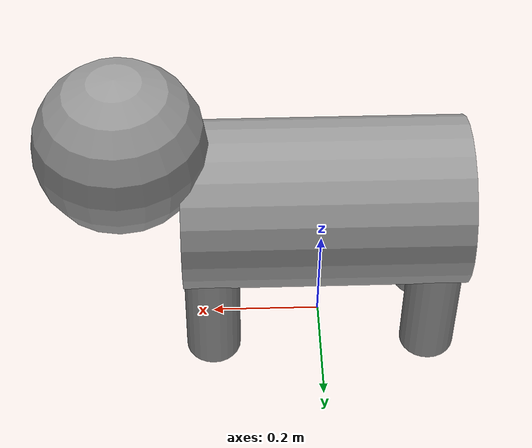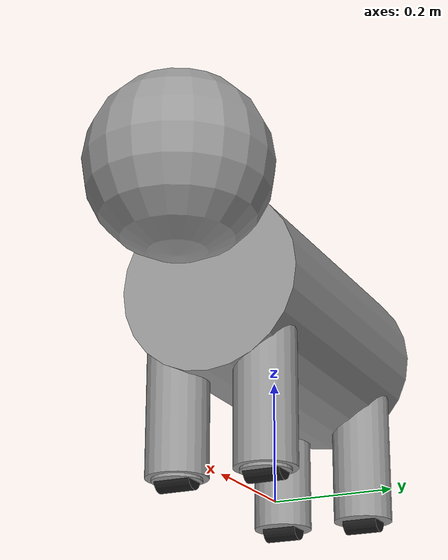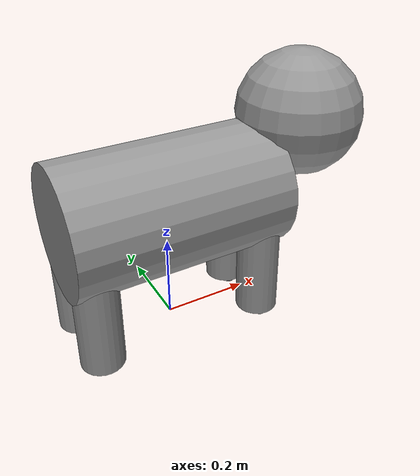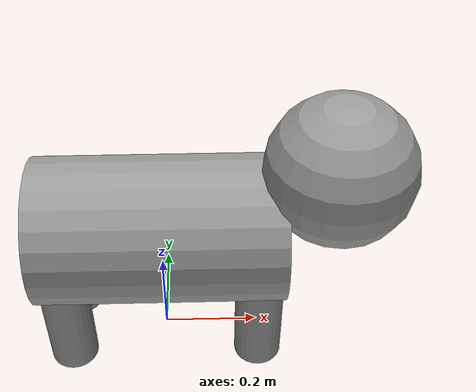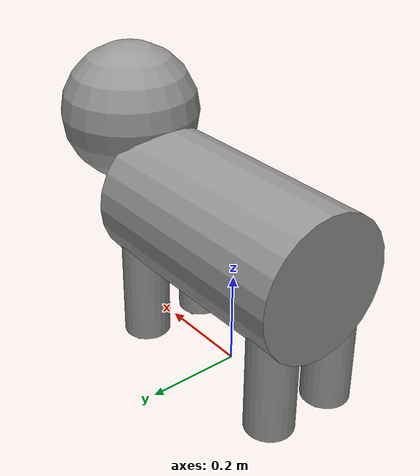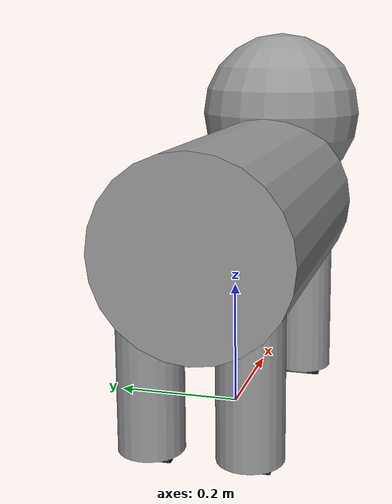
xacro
<?xml version="1.0"?>

<robot name="cat" xmlns:xacro="http://www.ros.org/wiki/xacro">

	<xacro:property name="PI" value="3.1415926535897931"/>

	<xacro:property name="bodyLength" value="0.5"/>
	<xacro:property name="bodyRadius" value="0.15"/>
	<xacro:property name="bodyMass" value="100"/>

	<xacro:property name="headRadius" value="0.15"/>
	<xacro:property name="headMass" value="10"/>

	<xacro:property name="legLength" value="0.25"/>
	<xacro:property name="legRadius" value="0.05"/>
	<xacro:property name="legMass" value="10"/>

	<xacro:property name="spinnerLength" value="0.01"/>
	<xacro:property name="spinnerRadius" value="0.04"/>
	<xacro:property name="spinnerMass" value="1"/>

	<xacro:property name="wheelLength" value="0.06"/>
	<xacro:property name="wheelRadius" value="0.02"/>
	<xacro:property name="wheelMass" value="10"/>

	<xacro:include filename="$(find cat_description)/urdf/cat.gazebo" />
	<xacro:include filename="$(find cat_description)/urdf/materials.xacro" />
	<xacro:include filename="$(find cat_description)/urdf/macros.xacro" />

	<link name="base_link">
		<collision>
			<geometry>
				<cylinder length="${bodyLength}" radius="${bodyRadius}" />
			</geometry>
			<origin rpy="0 ${PI/2} 0" xyz="0 0 0.3"/>
		</collision>
		<visual>
			<geometry>
				<cylinder length="${bodyLength}" radius="${bodyRadius}" />
			</geometry>
			<origin rpy="0 ${PI/2} 0" xyz="0 0 0.3"/>
			<material name="grey" />
		</visual>
		<inertial>
			<origin rpy="0 ${PI/2} 0" xyz="0 0 0.3"/>
			<mass value="${bodyMass}"/>
			<cylinder_inertia m="${bodyMass}" r="${bodyRadius}" h="${bodyLength}"/>
		</inertial>
	</link>

	<link name="head">
		<visual>
			<geometry>
				<sphere radius="${headRadius}" />
			</geometry>
			<material name="grey" />
		</visual>
		<collision>
			<geometry>
				<sphere radius="${headRadius}" />
			</geometry>
		</collision>
		<inertial>
			<mass value="${headMass}"/>
			<sphere_inertia m="${headMass}" r="${headRadius}" />
		</inertial>
	</link>

	<joint name="base_head" type="fixed">
		<parent link="base_link"/>
		<child link="head"/>
		<origin rpy="0 0 0" xyz="0.35 0 0.45"/>
	</joint>

	<leg lr="L" fb="F" tY="1" tX="1" />
	<leg lr="R" fb="F" tY="-1" tX="1" />
	<leg lr="L" fb="B" tY="1" tX="-1" />
	<leg lr="R" fb="B" tY="-1" tX="-1" />

	<spinnerL R="0.5"/>
	<spinnerR R="0.5"/>

	<wheel lr="L" fb="F"/>
	<wheel lr="R" fb="F"/>
	<wheelB lr="L" fb="B"/>
	<wheelB lr="R" fb="B"/>

	<joint name="hokuyo_joint" type="fixed">
		<axis xyz="0 0 0" />
		<origin xyz="0 0 0" rpy="0 0 0"/>
		<parent link="head"/>
		<child link="hokuyo_link"/>
  	</joint>

	<!-- Hokuyo Laser -->
	<link name="hokuyo_link">
		<collision>
		<origin xyz="0 0 0" rpy="0 0 0"/>
		<geometry>
		<box size="0.1 0.1 0.1"/>
		</geometry>
		</collision>

		<visual>
		<origin xyz="0 0 0" rpy="0 0 0"/>
		<geometry>
			<box size="0.1 0.1 0.1"/>
		</geometry>
		</visual>

		<inertial>
		<mass value="1e-5" />
		<origin xyz="0 0 0" rpy="0 0 0"/>
		<inertia ixx="1e-6" ixy="0" ixz="0" iyy="1e-6" iyz="0" izz="1e-6" />
		</inertial>
	</link>

</robot>

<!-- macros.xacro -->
<robot xmlns:xacro="http://www.ros.org/wiki/xacro">

  <!--
    m = mass
    r = radius
    h = height
  -->
  <xacro:macro name="cylinder_inertia" params="m r h">
    <inertia  ixx="${m*(3*r*r+h*h)/12}" ixy = "0" ixz = "0"
              iyy="${m*(3*r*r+h*h)/12}" iyz = "0"
              izz="${m*r*r/2}"
    />
  </xacro:macro>

  <!--
    m = mass
    x = x value
    y = y value
    z = z value
  -->
  <xacro:macro name="box_inertia" params="m x y z">
    <inertia  ixx="${m*(y*y+z*z)/12}" ixy = "0" ixz = "0"
              iyy="${m*(x*x+z*z)/12}" iyz = "0"
              izz="${m*(x*x+z*z)/12}"
    />
  </xacro:macro>

  <!--
    m = mass
    r = radius
  -->
  <xacro:macro name="sphere_inertia" params="m r">
    <inertia  ixx="${2*m*r*r/5}" ixy = "0" ixz = "0"
              iyy="${2*m*r*r/5}" iyz = "0"
              izz="${2*m*r*r/5}"
    />
  </xacro:macro>

  <!--
    lr = left/right ("L" | "R")
    fb = front/back ("F" | "B")
    tY = translation in Y ("1" | "-1")
    tX = translation in X ("1" | "-1")
  -->
  <xacro:macro name="leg" params="lr fb tY tX">

    <link name="leg_${lr}${fb}">
      <collision>
        <geometry>
          <cylinder length="${legLength}" radius="${legRadius}" />
        </geometry>
      </collision>

      <visual>
        <geometry>
          <cylinder length="${legLength}" radius="${legRadius}" />
        </geometry>
        <material name="grey" />
      </visual>

      <inertial>
        <mass value="${legMass}"/>
        <cylinder_inertia m="${legMass}" r="${legRadius}" h="${legLength}"/>
      </inertial>
    </link>

    <gazebo reference="leg_${lr}${fb}">
      <material>Gazebo/Grey</material>
    </gazebo>

    <joint name="body_leg_${lr}${fb}_joint" type="fixed">
      <parent link="base_link"/>
      <child link="leg_${lr}${fb}"/>
      <origin rpy="0 0 0" xyz="${tX*2*bodyLength/5} ${tY*bodyRadius/2} ${legLength/2}"/>
    </joint>
  </xacro:macro>

  <xacro:macro name="spinnerL" params="R">

    <link name="spinner_LF">
      <collision>
        <geometry>
          <cylinder length="${spinnerLength}" radius="${spinnerRadius}" />
        </geometry>
      </collision>

      <visual>
        <geometry>
          <cylinder length="${spinnerLength}" radius="${spinnerRadius}" />
        </geometry>
        <material name="grey" />
      </visual>

      <inertial>
        <mass value="${spinnerMass}"/>
        <cylinder_inertia m="${spinnerMass}" r="${spinnerRadius}" h="${spinnerLength}"/>
      </inertial>
    </link>

    <gazebo reference="leg_LF">
      <material>Gazebo/Grey</material>
    </gazebo>

    <joint name="leg_LF_spinner_joint" type="revolute">
      <parent link="leg_LF"/>
      <child link="spinner_LF"/>
      <limit lower="-${atan((4*bodyLength/5)/(R + bodyRadius/2))}" upper="${atan((4*bodyLength/5)/(R - bodyRadius/2))}" effort="1000" velocity="1000"/>
      <origin rpy="0 0 0" xyz="0 0 -${legLength/2}"/>
      <axis xyz="0 0 1"/>
    </joint>

    <transmission name="trans_spin_LF">
      <type>transmission_interface/SimpleTransmission</type>
      <joint name="leg_LF_spinner_joint">
        <hardwareInterface>hardware_interface/EffortJointInterface</hardwareInterface>
      </joint>
      <actuator name="motor_spin_LF">
        <hardwareInterface>hardware_interface/EffortJointInterface</hardwareInterface>
        <mechanicalReduction>1</mechanicalReduction>
      </actuator>
    </transmission>

  </xacro:macro>

  <xacro:macro name="spinnerR" params="R">

    <link name="spinner_RF">
      <collision>
        <geometry>
          <cylinder length="${spinnerLength}" radius="${spinnerRadius}" />
        </geometry>
      </collision>

      <visual>
        <geometry>
          <cylinder length="${spinnerLength}" radius="${spinnerRadius}" />
        </geometry>
        <material name="grey" />
      </visual>

      <inertial>
        <mass value="${spinnerMass}"/>
        <cylinder_inertia m="${spinnerMass}" r="${spinnerRadius}" h="${spinnerLength}"/>
      </inertial>
    </link>

    <gazebo reference="leg_RF">
      <material>Gazebo/Grey</material>
    </gazebo>

    <joint name="leg_RF_spinner_joint" type="revolute">
      <parent link="leg_RF"/>
      <child link="spinner_RF"/>
      <limit lower="-${atan((4*bodyLength/5)/(R - bodyRadius/2))}" upper="${atan((4*bodyLength/5)/(R + bodyRadius/2))}" effort="1000" velocity="1000"/>
      <origin rpy="0 0 0" xyz="0 0 -${legLength/2}"/>
      <axis xyz="0 0 1"/>
    </joint>

    <transmission name="trans_spin_RF">
      <type>transmission_interface/SimpleTransmission</type>
      <joint name="leg_RF_spinner_joint">
        <hardwareInterface>hardware_interface/EffortJointInterface</hardwareInterface>
      </joint>
      <actuator name="motor_spin_RF">
        <hardwareInterface>hardware_interface/EffortJointInterface</hardwareInterface>
        <mechanicalReduction>1</mechanicalReduction>
      </actuator>
    </transmission>

  </xacro:macro>

  <!--
    lr = left/right ("L" | " R")
    fb = front/back ("F" | "B")
    mr = mirror (Boolean | "")
    mlr = mirror left/right ("L" | "R")
    mfb = mirror front/back ("F" | "B")
  -->
  <xacro:macro name="wheel" params="lr fb">

    <link name="wheel_${lr}${fb}">
      <collision>
        <geometry>
          <cylinder length="${wheelLength}" radius="${wheelRadius}" />
        </geometry>
      </collision>

      <visual>
        <geometry>
          <cylinder length="${wheelLength}" radius="${wheelRadius}" />
        </geometry>
        <material name="black" />
      </visual>

      <inertial>
        <mass value="${wheelMass}"/>
        <cylinder_inertia m="${wheelMass}" r="${wheelRadius}" h="${wheelLength}"/>
      </inertial>
    </link>

    <gazebo reference="wheel_${lr}${fb}">
      <material>Gazebo/Black</material>
    </gazebo>

    <joint name="leg_wheel_${lr}${fb}_joint" type="continuous">
      <parent link="spinner_${lr}${fb}"/>
      <child link="wheel_${lr}${fb}"/>
      <origin rpy="${PI/2} ${PI/2} 0" xyz="0 0 0"/>
      <axis xyz="0 0 -1"/>
      <joint_properties damping="0.0" friction="0.0"/>
    </joint>

  </xacro:macro>

  <xacro:macro name="wheelB" params="lr fb">

    <link name="wheel_${lr}${fb}">
      <collision>
        <geometry>
          <cylinder length="${wheelLength}" radius="${wheelRadius}" />
        </geometry>
      </collision>

      <visual>
        <geometry>
          <cylinder length="${wheelLength}" radius="${wheelRadius}" />
        </geometry>
        <material name="black" />
      </visual>

      <inertial>
        <mass value="${wheelMass}"/>
        <cylinder_inertia m="${wheelMass}" r="${wheelRadius}" h="${wheelLength}"/>
      </inertial>
    </link>

    <gazebo reference="wheel_${lr}${fb}">
      <material>Gazebo/Black</material>
    </gazebo>

    <joint name="leg_wheel_${lr}${fb}_joint" type="continuous">
      <parent link="leg_${lr}${fb}"/>
      <child link="wheel_${lr}${fb}"/>
      <origin rpy="${PI/2} ${PI/2} 0" xyz="0 0 -${legLength/2}"/>
      <axis xyz="0 0 -1"/>
      <joint_properties damping="0.0" friction="0.0"/>
    </joint>

    <transmission name="trans_${lr}${fb}">
      <type>transmission_interface/SimpleTransmission</type>
      <joint name="leg_wheel_${lr}${fb}_joint">
        <hardwareInterface>hardware_interface/EffortJointInterface</hardwareInterface>
      </joint>
      <actuator name="motor_${lr}${fb}">
        <hardwareInterface>hardware_interface/EffortJointInterface</hardwareInterface>
        <mechanicalReduction>1</mechanicalReduction>
      </actuator>
    </transmission>
  </xacro:macro>

</robot>
